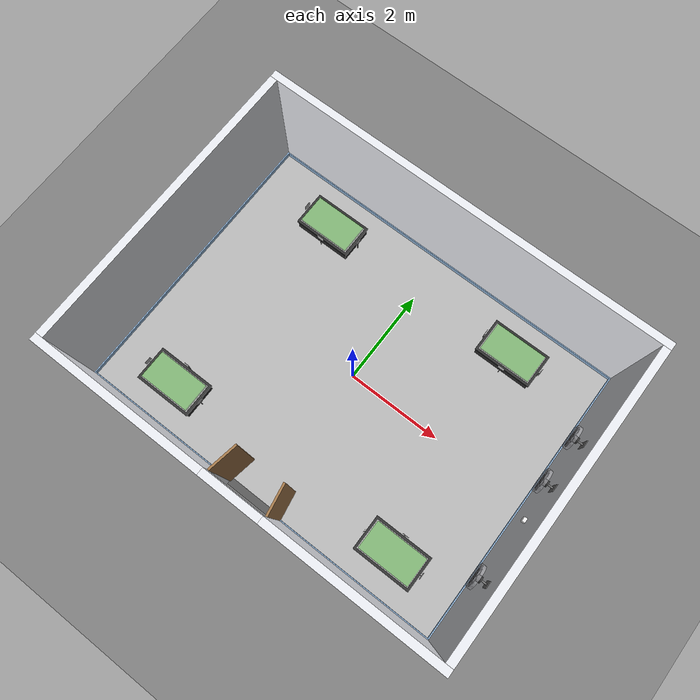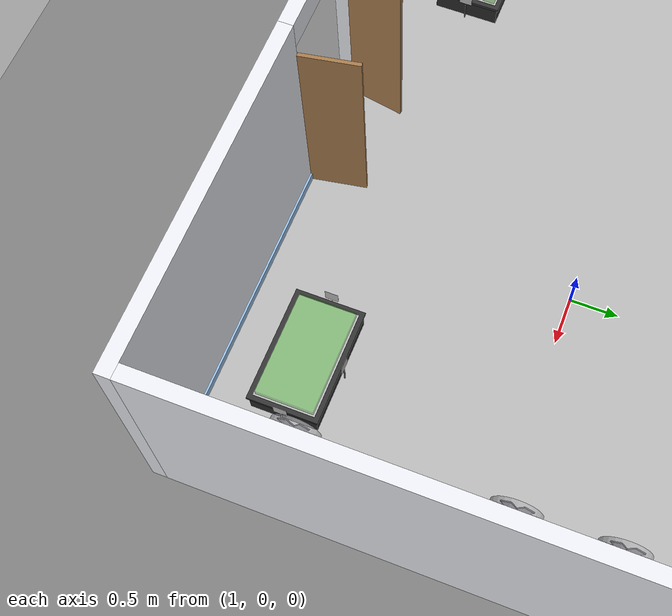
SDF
<?xml version="1.0" ?>
<sdf version="1.7">
  <world name="nursery_room">
    <plugin name="gazebo_ros_state" filename="libgazebo_ros_state.so"></plugin>

    <physics type="ode">
      <max_step_size>0.001</max_step_size>
      <real_time_factor>1</real_time_factor>
      <real_time_update_rate>1000</real_time_update_rate>
    </physics>

    <scene>
      <ambient>0.55 0.55 0.55 1</ambient>
      <background>0.75 0.80 0.85 1</background>
      <shadows>true</shadows>
    </scene>

    <include><uri>model://sun</uri></include>

    <!-- soft indoor fill lights -->
    <light name="lamp_w" type="point">
      <pose>-2 0 2.4 0 0 0</pose>
      <diffuse>0.6 0.6 0.55 1</diffuse>
      <specular>0.1 0.1 0.1 1</specular>
      <attenuation><range>10</range><constant>0.4</constant><linear>0.05</linear><quadratic>0.01</quadratic></attenuation>
      <cast_shadows>false</cast_shadows>
    </light>
    <light name="lamp_e" type="point">
      <pose>2 0 2.4 0 0 0</pose>
      <diffuse>0.6 0.6 0.55 1</diffuse>
      <specular>0.1 0.1 0.1 1</specular>
      <attenuation><range>10</range><constant>0.4</constant><linear>0.05</linear><quadratic>0.01</quadratic></attenuation>
      <cast_shadows>false</cast_shadows>
    </light>

    <!-- outside ground (concrete) slightly below the tiled floor -->
    <model name="outside_ground">
      <static>true</static>
      <pose>0 0 -0.002 0 0 0</pose>
      <link name="link">
        <collision name="collision">
          <geometry><plane><normal>0 0 1</normal><size>40 40</size></plane></geometry>
        </collision>
        <visual name="visual">
          <geometry><plane><normal>0 0 1</normal><size>40 40</size></plane></geometry>
          <material><ambient>0.45 0.45 0.45 1</ambient><diffuse>0.5 0.5 0.5 1</diffuse></material>
        </visual>
      </link>
    </model>

    <include>
      <uri>model://nursery_floor</uri>
      <name>lantai_persemaian</name>
      <pose>0 0 0 0 0 0</pose>
    </include>

    <!-- ===================== WALLS ===================== -->
    <model name="dinding">
      <static>true</static>

      <!-- DINDING UTARA -->
      <link name="dinding_utara">
        <pose>0 3.075 1.25 0 0 0</pose>
        <collision name="c"><geometry><box><size>8.3 0.15 2.5</size></box></geometry></collision>
        <visual name="v">
          <geometry><box><size>8.3 0.15 2.5</size></box></geometry>
          <material><ambient>0.85 0.86 0.88 1</ambient><diffuse>0.92 0.93 0.95 1</diffuse></material>
        </visual>
      </link>

      <!-- DINDING BARAT -->
      <link name="dinding_barat">
        <pose>-4.075 0 1.25 0 0 0</pose>
        <collision name="c"><geometry><box><size>0.15 6.0 2.5</size></box></geometry></collision>
        <visual name="v">
          <geometry><box><size>0.15 6.0 2.5</size></box></geometry>
          <material><ambient>0.85 0.86 0.88 1</ambient><diffuse>0.92 0.93 0.95 1</diffuse></material>
        </visual>
      </link>

      <!-- DINDING TIMUR (fans + sensor mounted on this wall) -->
      <link name="dinding_timur">
        <pose>4.075 0 1.25 0 0 0</pose>
        <collision name="c"><geometry><box><size>0.15 6.0 2.5</size></box></geometry></collision>
        <visual name="v">
          <geometry><box><size>0.15 6.0 2.5</size></box></geometry>
          <material><ambient>0.85 0.86 0.88 1</ambient><diffuse>0.92 0.93 0.95 1</diffuse></material>
        </visual>
      </link>

      <!-- DINDING SELATAN, split around the 1.2 m main entrance -->
      <link name="dinding_selatan_barat">
        <pose>-2.375 -3.075 1.25 0 0 0</pose>
        <collision name="c"><geometry><box><size>3.55 0.15 2.5</size></box></geometry></collision>
        <visual name="v">
          <geometry><box><size>3.55 0.15 2.5</size></box></geometry>
          <material><ambient>0.85 0.86 0.88 1</ambient><diffuse>0.92 0.93 0.95 1</diffuse></material>
        </visual>
      </link>
      <link name="dinding_selatan_timur">
        <pose>2.375 -3.075 1.25 0 0 0</pose>
        <collision name="c"><geometry><box><size>3.55 0.15 2.5</size></box></geometry></collision>
        <visual name="v">
          <geometry><box><size>3.55 0.15 2.5</size></box></geometry>
          <material><ambient>0.85 0.86 0.88 1</ambient><diffuse>0.92 0.93 0.95 1</diffuse></material>
        </visual>
      </link>
      <!-- lintel above the door -->
      <link name="ambang_pintu">
        <pose>0 -3.075 2.35 0 0 0</pose>
        <collision name="c"><geometry><box><size>1.2 0.15 0.3</size></box></geometry></collision>
        <visual name="v">
          <geometry><box><size>1.2 0.15 0.3</size></box></geometry>
          <material><ambient>0.85 0.86 0.88 1</ambient><diffuse>0.92 0.93 0.95 1</diffuse></material>
        </visual>
      </link>

      <!-- skirting strip (the blue band in the plan) -->
      <link name="lis_lantai">
        <pose>0 0 0.05 0 0 0</pose>
        <visual name="n"><pose>0 2.99 0 0 0 0</pose><geometry><box><size>8.0 0.02 0.10</size></box></geometry>
          <material><ambient>0.55 0.70 0.85 1</ambient><diffuse>0.6 0.75 0.9 1</diffuse></material></visual>
        <visual name="s1"><pose>-2.3 -2.99 0 0 0 0</pose><geometry><box><size>3.4 0.02 0.10</size></box></geometry>
          <material><ambient>0.55 0.70 0.85 1</ambient><diffuse>0.6 0.75 0.9 1</diffuse></material></visual>
        <visual name="s2"><pose>2.3 -2.99 0 0 0 0</pose><geometry><box><size>3.4 0.02 0.10</size></box></geometry>
          <material><ambient>0.55 0.70 0.85 1</ambient><diffuse>0.6 0.75 0.9 1</diffuse></material></visual>
        <visual name="w"><pose>-3.99 0 0 0 0 0</pose><geometry><box><size>0.02 6.0 0.10</size></box></geometry>
          <material><ambient>0.55 0.70 0.85 1</ambient><diffuse>0.6 0.75 0.9 1</diffuse></material></visual>
        <visual name="e"><pose>3.99 0 0 0 0 0</pose><geometry><box><size>0.02 6.0 0.10</size></box></geometry>
          <material><ambient>0.55 0.70 0.85 1</ambient><diffuse>0.6 0.75 0.9 1</diffuse></material></visual>
      </link>
    </model>

    <!-- ===================== PINTU MASUK UTAMA (double door, open inwards) ===================== -->
    <model name="pintu_masuk_utama">
      <static>true</static>
      <link name="daun_kiri">
        <!-- hinge at x=-0.6, leaf swung 80 deg into the room -->
        <pose>-0.6 -3.0 1.05 0 0 1.396</pose>
        <visual name="v">
          <pose>0.3 0 0 0 0 0</pose>
          <geometry><box><size>0.6 0.04 2.1</size></box></geometry>
          <material><ambient>0.55 0.40 0.25 1</ambient><diffuse>0.65 0.48 0.30 1</diffuse></material>
        </visual>
        <collision name="c">
          <pose>0.3 0 0 0 0 0</pose>
          <geometry><box><size>0.6 0.04 2.1</size></box></geometry>
        </collision>
      </link>
      <link name="daun_kanan">
        <pose>0.6 -3.0 1.05 0 0 1.745</pose>
        <visual name="v">
          <pose>0.3 0 0 0 0 0</pose>
          <geometry><box><size>0.6 0.04 2.1</size></box></geometry>
          <material><ambient>0.55 0.40 0.25 1</ambient><diffuse>0.65 0.48 0.30 1</diffuse></material>
        </visual>
        <collision name="c">
          <pose>0.3 0 0 0 0 0</pose>
          <geometry><box><size>0.6 0.04 2.1</size></box></geometry>
        </collision>
      </link>
      <!-- threshold marker on the floor -->
      <link name="ambang">
        <pose>0 -3.0 0.003 0 0 0</pose>
        <visual name="v">
          <geometry><box><size>1.2 0.15 0.006</size></box></geometry>
          <material><ambient>0.3 0.3 0.3 1</ambient><diffuse>0.35 0.35 0.35 1</diffuse></material>
        </visual>
      </link>
    </model>

    <!-- ===================== BAKI BIBIT TUNGGAL (4x) ===================== -->
    <include>
      <uri>model://seedling_tray</uri>
      <name>baki_bibit_1_barat_laut</name>
      <pose>-2.2 2.2 0 0 0 0</pose>
    </include>
    <include>
      <uri>model://seedling_tray</uri>
      <name>baki_bibit_2_timur_laut</name>
      <pose>2.2 2.2 0 0 0 0</pose>
    </include>
    <include>
      <uri>model://seedling_tray</uri>
      <name>baki_bibit_3_barat_daya</name>
      <pose>-2.6 -2.2 0 0 0 0</pose>
    </include>
    <include>
      <uri>model://seedling_tray</uri>
      <name>baki_bibit_4_timur_daya</name>
      <pose>2.6 -2.2 0 0 0 0</pose>
    </include>

    <include>
      <uri>model://aruco_marker_1</uri>
      <name>marker_baki_1_barat_laut_dock</name>
      <pose>-2.200 1.810 0 0 0 -1.5708</pose>
    </include>
    <include>
      <uri>model://aruco_marker_1</uri>
      <name>marker_baki_1_barat_laut_left</name>
      <pose>-2.840 2.200 0 0 0 3.1416</pose>
    </include>
    <include>
      <uri>model://aruco_marker_1</uri>
      <name>marker_baki_1_barat_laut_right</name>
      <pose>-1.560 2.200 0 0 0 0.0</pose>
    </include>
    <include>
      <uri>model://aruco_marker_2</uri>
      <name>marker_baki_2_timur_laut_dock</name>
      <pose>2.200 1.810 0 0 0 -1.5708</pose>
    </include>
    <include>
      <uri>model://aruco_marker_2</uri>
      <name>marker_baki_2_timur_laut_left</name>
      <pose>1.560 2.200 0 0 0 3.1416</pose>
    </include>
    <include>
      <uri>model://aruco_marker_2</uri>
      <name>marker_baki_2_timur_laut_right</name>
      <pose>2.840 2.200 0 0 0 0.0</pose>
    </include>
    <include>
      <uri>model://aruco_marker_3</uri>
      <name>marker_baki_3_barat_daya_dock</name>
      <pose>-2.600 -1.810 0 0 0 1.5708</pose>
    </include>
    <include>
      <uri>model://aruco_marker_3</uri>
      <name>marker_baki_3_barat_daya_left</name>
      <pose>-3.240 -2.200 0 0 0 3.1416</pose>
    </include>
    <include>
      <uri>model://aruco_marker_3</uri>
      <name>marker_baki_3_barat_daya_right</name>
      <pose>-1.960 -2.200 0 0 0 0.0</pose>
    </include>
    <include>
      <uri>model://aruco_marker_4</uri>
      <name>marker_baki_4_timur_daya_dock</name>
      <pose>2.600 -1.810 0 0 0 1.5708</pose>
    </include>
    <include>
      <uri>model://aruco_marker_4</uri>
      <name>marker_baki_4_timur_daya_left</name>
      <pose>1.960 -2.200 0 0 0 3.1416</pose>
    </include>
    <include>
      <uri>model://aruco_marker_4</uri>
      <name>marker_baki_4_timur_daya_right</name>
      <pose>3.240 -2.200 0 0 0 0.0</pose>
    </include>

    <!-- ===================== KIPAS VENTILASI (east wall, blowing west) ===================== -->
    <include>
      <uri>model://wall_fan</uri>
      <name>kipas_ventilasi_1</name>
      <pose>3.99 1.1 1.7 0 0 3.14159</pose>
    </include>
    <include>
      <uri>model://wall_fan</uri>
      <name>kipas_ventilasi_2</name>
      <pose>3.99 0.2 1.7 0 0 3.14159</pose>
    </include>
    <include>
      <uri>model://wall_fan</uri>
      <name>kipas_ventilasi_3</name>
      <pose>3.99 -1.7 1.7 0 0 3.14159</pose>
    </include>

    <!-- ===================== SENSOR SUHU & KELEMBABAN ===================== -->
    <include>
      <uri>model://climate_sensor</uri>
      <name>sensor_suhu_kelembaban</name>
      <pose>3.99 -0.45 1.35 0 0 3.14159</pose>
    </include>

    <!-- GUI camera looking at the room from the south-west, above -->
    <gui fullscreen="0">
      <camera name="user_camera">
        <pose>-5.5 -8.5 6.5 0 0.62 0.95</pose>
      </camera>
    </gui>

  </world>
</sdf>

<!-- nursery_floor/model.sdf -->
<sdf version="1.7">
  <model name="nursery_floor">
    <static>true</static>
    <link name="link">
      <collision name="collision">
        <geometry><plane><normal>0 0 1</normal><size>8 6</size></plane></geometry>
        <surface>
          <friction><ode><mu>0.9</mu><mu2>0.9</mu2></ode></friction>
        </surface>
      </collision>
      <visual name="visual">
        <cast_shadows>false</cast_shadows>
        <geometry><plane><normal>0 0 1</normal><size>8 6</size></plane></geometry>
        <material>
          <script>
            <uri>model://nursery_floor/materials/scripts</uri>
            <uri>model://nursery_floor/materials/textures</uri>
            <name>NurseryFloor/Tiles</name>
          </script>
        </material>
      </visual>
    </link>
  </model>
</sdf>

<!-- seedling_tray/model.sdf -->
<!-- Mat-type rice seedling tray, one per room corner (see nursery_room.world).
     Outer tub 1.20 x 0.70 x 0.25 m, dark plastic rim, soil + seedlings on top. -->
<sdf version="1.7">
  <model name="seedling_tray">
    <static>true</static>
    <link name="link">
      <collision name="tub">
        <pose>0 0 0.125 0 0 0</pose>
        <geometry><box><size>1.20 0.70 0.25</size></box></geometry>
      </collision>

      <!-- tub body -->
      <visual name="tub">
        <pose>0 0 0.11 0 0 0</pose>
        <geometry><box><size>1.20 0.70 0.22</size></box></geometry>
        <material>
          <ambient>0.10 0.10 0.10 1</ambient>
          <diffuse>0.16 0.16 0.16 1</diffuse>
          <specular>0.3 0.3 0.3 1</specular>
        </material>
      </visual>
      <!-- rim lip (slightly wider) -->
      <visual name="rim">
        <pose>0 0 0.235 0 0 0</pose>
        <geometry><box><size>1.24 0.74 0.03</size></box></geometry>
        <material>
          <ambient>0.12 0.12 0.12 1</ambient>
          <diffuse>0.20 0.20 0.20 1</diffuse>
          <specular>0.4 0.4 0.4 1</specular>
        </material>
      </visual>
      <!-- seedling mat surface (textured), 1 cm below the rim -->
      <visual name="seedlings">
        <pose>0 0 0.245 0 0 0</pose>
        <geometry><box><size>1.14 0.64 0.02</size></box></geometry>
        <material>
          <script>
            <uri>model://seedling_tray/materials/scripts</uri>
            <uri>model://seedling_tray/materials/textures</uri>
            <name>SeedlingTray/Seedlings</name>
          </script>
        </material>
      </visual>
      <!-- blades volume: translucent green slab so the crop has height in the camera -->
      <visual name="canopy">
        <pose>0 0 0.29 0 0 0</pose>
        <geometry><box><size>1.10 0.60 0.07</size></box></geometry>
        <transparency>0.55</transparency>
        <material>
          <ambient>0.20 0.55 0.15 1</ambient>
          <diffuse>0.30 0.75 0.20 1</diffuse>
          <specular>0.05 0.05 0.05 1</specular>
        </material>
      </visual>
    </link>
  </model>
</sdf>

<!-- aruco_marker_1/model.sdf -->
<sdf version="1.7">
  <model name="aruco_marker_1">
    <static>true</static>
    <link name="link">
      <!-- post: stops POST_GAP below the board's bottom edge, see comment above -->
      <visual name="post">
        <pose>0 0 0.100 0 0 0</pose>
        <geometry><cylinder><radius>0.008</radius><length>0.200</length></cylinder></geometry>
        <material><ambient>0.3 0.3 0.3 1</ambient><diffuse>0.4 0.4 0.4 1</diffuse></material>
      </visual>
      <!-- printed sheet; the texture faces +x -->
      <visual name="board">
        <pose>0.004 0 0.300 0 0 0</pose>
        <geometry><box><size>0.002 0.140 0.140</size></box></geometry>
        <material>
          <script>
            <uri>model://aruco_marker_1/materials/scripts</uri>
            <uri>model://aruco_marker_1/materials/textures</uri>
            <name>Aruco/Marker1</name>
          </script>
        </material>
      </visual>
      <collision name="collision">
        <pose>0 0 0.150 0 0 0</pose>
        <geometry><box><size>0.02 0.140 0.300</size></box></geometry>
      </collision>
    </link>
  </model>
</sdf>

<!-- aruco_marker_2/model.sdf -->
<sdf version="1.7">
  <model name="aruco_marker_2">
    <static>true</static>
    <link name="link">
      <!-- post: stops POST_GAP below the board's bottom edge, see comment above -->
      <visual name="post">
        <pose>0 0 0.100 0 0 0</pose>
        <geometry><cylinder><radius>0.008</radius><length>0.200</length></cylinder></geometry>
        <material><ambient>0.3 0.3 0.3 1</ambient><diffuse>0.4 0.4 0.4 1</diffuse></material>
      </visual>
      <!-- printed sheet; the texture faces +x -->
      <visual name="board">
        <pose>0.004 0 0.300 0 0 0</pose>
        <geometry><box><size>0.002 0.140 0.140</size></box></geometry>
        <material>
          <script>
            <uri>model://aruco_marker_2/materials/scripts</uri>
            <uri>model://aruco_marker_2/materials/textures</uri>
            <name>Aruco/Marker2</name>
          </script>
        </material>
      </visual>
      <collision name="collision">
        <pose>0 0 0.150 0 0 0</pose>
        <geometry><box><size>0.02 0.140 0.300</size></box></geometry>
      </collision>
    </link>
  </model>
</sdf>

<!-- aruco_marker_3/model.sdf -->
<sdf version="1.7">
  <model name="aruco_marker_3">
    <static>true</static>
    <link name="link">
      <!-- post: stops POST_GAP below the board's bottom edge, see comment above -->
      <visual name="post">
        <pose>0 0 0.100 0 0 0</pose>
        <geometry><cylinder><radius>0.008</radius><length>0.200</length></cylinder></geometry>
        <material><ambient>0.3 0.3 0.3 1</ambient><diffuse>0.4 0.4 0.4 1</diffuse></material>
      </visual>
      <!-- printed sheet; the texture faces +x -->
      <visual name="board">
        <pose>0.004 0 0.300 0 0 0</pose>
        <geometry><box><size>0.002 0.140 0.140</size></box></geometry>
        <material>
          <script>
            <uri>model://aruco_marker_3/materials/scripts</uri>
            <uri>model://aruco_marker_3/materials/textures</uri>
            <name>Aruco/Marker3</name>
          </script>
        </material>
      </visual>
      <collision name="collision">
        <pose>0 0 0.150 0 0 0</pose>
        <geometry><box><size>0.02 0.140 0.300</size></box></geometry>
      </collision>
    </link>
  </model>
</sdf>

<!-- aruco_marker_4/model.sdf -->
<sdf version="1.7">
  <model name="aruco_marker_4">
    <static>true</static>
    <link name="link">
      <!-- post: stops POST_GAP below the board's bottom edge, see comment above -->
      <visual name="post">
        <pose>0 0 0.100 0 0 0</pose>
        <geometry><cylinder><radius>0.008</radius><length>0.200</length></cylinder></geometry>
        <material><ambient>0.3 0.3 0.3 1</ambient><diffuse>0.4 0.4 0.4 1</diffuse></material>
      </visual>
      <!-- printed sheet; the texture faces +x -->
      <visual name="board">
        <pose>0.004 0 0.300 0 0 0</pose>
        <geometry><box><size>0.002 0.140 0.140</size></box></geometry>
        <material>
          <script>
            <uri>model://aruco_marker_4/materials/scripts</uri>
            <uri>model://aruco_marker_4/materials/textures</uri>
            <name>Aruco/Marker4</name>
          </script>
        </material>
      </visual>
      <collision name="collision">
        <pose>0 0 0.150 0 0 0</pose>
        <geometry><box><size>0.02 0.140 0.300</size></box></geometry>
      </collision>
    </link>
  </model>
</sdf>

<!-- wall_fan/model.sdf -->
<!-- Wall-mounted ventilation fan. Model +x points INTO the room (away from the wall). -->
<sdf version="1.7">
  <model name="wall_fan">
    <static>true</static>
    <link name="link">
      <!-- wall bracket plate -->
      <visual name="bracket">
        <pose>-0.02 0 0 0 0 0</pose>
        <geometry><box><size>0.04 0.14 0.30</size></box></geometry>
        <material><ambient>0.35 0.35 0.35 1</ambient><diffuse>0.45 0.45 0.45 1</diffuse></material>
      </visual>
      <!-- arm -->
      <visual name="arm">
        <pose>0.08 0 0 0 1.5708 0</pose>
        <geometry><cylinder><radius>0.015</radius><length>0.16</length></cylinder></geometry>
        <material><ambient>0.35 0.35 0.35 1</ambient><diffuse>0.5 0.5 0.5 1</diffuse></material>
      </visual>
      <!-- guard ring / cage -->
      <visual name="cage">
        <pose>0.20 0 0 0 1.5708 0</pose>
        <geometry><cylinder><radius>0.225</radius><length>0.08</length></cylinder></geometry>
        <transparency>0.35</transparency>
        <material><ambient>0.5 0.5 0.52 1</ambient><diffuse>0.7 0.7 0.72 1</diffuse><specular>0.6 0.6 0.6 1</specular></material>
      </visual>
      <!-- hub / motor -->
      <visual name="hub">
        <pose>0.16 0 0 0 1.5708 0</pose>
        <geometry><cylinder><radius>0.06</radius><length>0.12</length></cylinder></geometry>
        <material><ambient>0.15 0.15 0.15 1</ambient><diffuse>0.2 0.2 0.2 1</diffuse></material>
      </visual>
      <!-- three blades -->
      <visual name="blade_0">
        <pose>0.21 0 0 0 0 0</pose>
        <geometry><box><size>0.01 0.40 0.10</size></box></geometry>
        <material><ambient>0.2 0.2 0.22 1</ambient><diffuse>0.3 0.3 0.33 1</diffuse></material>
      </visual>
      <visual name="blade_1">
        <pose>0.21 0 0 1.0472 0 0</pose>
        <geometry><box><size>0.01 0.40 0.10</size></box></geometry>
        <material><ambient>0.2 0.2 0.22 1</ambient><diffuse>0.3 0.3 0.33 1</diffuse></material>
      </visual>
      <visual name="blade_2">
        <pose>0.21 0 0 2.0944 0 0</pose>
        <geometry><box><size>0.01 0.40 0.10</size></box></geometry>
        <material><ambient>0.2 0.2 0.22 1</ambient><diffuse>0.3 0.3 0.33 1</diffuse></material>
      </visual>
      <collision name="collision">
        <pose>0.12 0 0 0 0 0</pose>
        <geometry><box><size>0.26 0.46 0.46</size></box></geometry>
      </collision>
    </link>
  </model>
</sdf>

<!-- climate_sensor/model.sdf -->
<!-- Temperature & humidity sensor enclosure (e.g. DHT22/SHT31 in a vented box).
     Model +x points into the room. -->
<sdf version="1.7">
  <model name="climate_sensor">
    <static>true</static>
    <link name="link">
      <visual name="box">
        <pose>0.03 0 0 0 0 0</pose>
        <geometry><box><size>0.06 0.09 0.13</size></box></geometry>
        <material><ambient>0.9 0.9 0.9 1</ambient><diffuse>0.95 0.95 0.95 1</diffuse></material>
      </visual>
      <visual name="led">
        <pose>0.061 0.025 0.045 0 0 0</pose>
        <geometry><sphere><radius>0.006</radius></sphere></geometry>
        <material><ambient>0.1 0.9 0.2 1</ambient><diffuse>0.1 1.0 0.2 1</diffuse><emissive>0.1 0.8 0.2 1</emissive></material>
      </visual>
      <collision name="collision">
        <pose>0.03 0 0 0 0 0</pose>
        <geometry><box><size>0.06 0.09 0.13</size></box></geometry>
      </collision>
    </link>
  </model>
</sdf>
